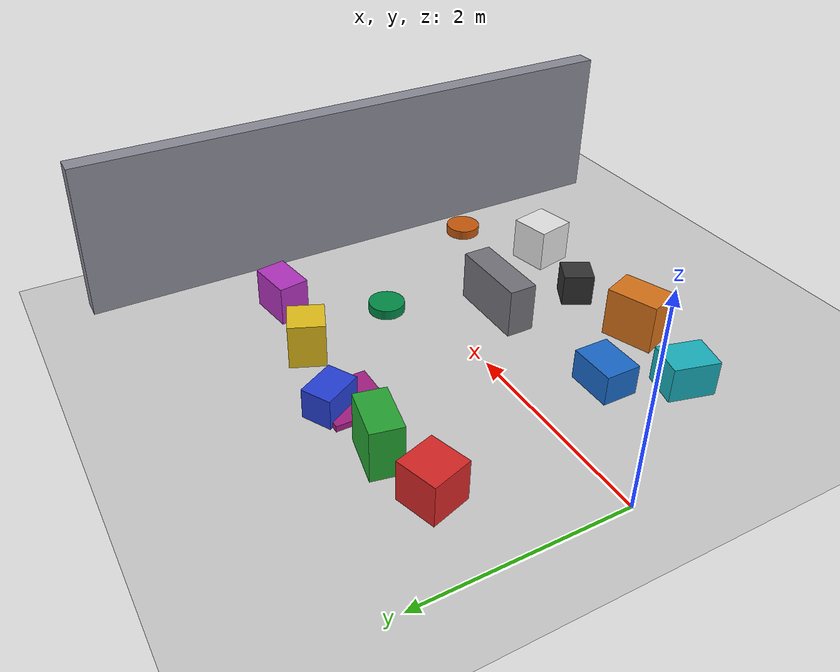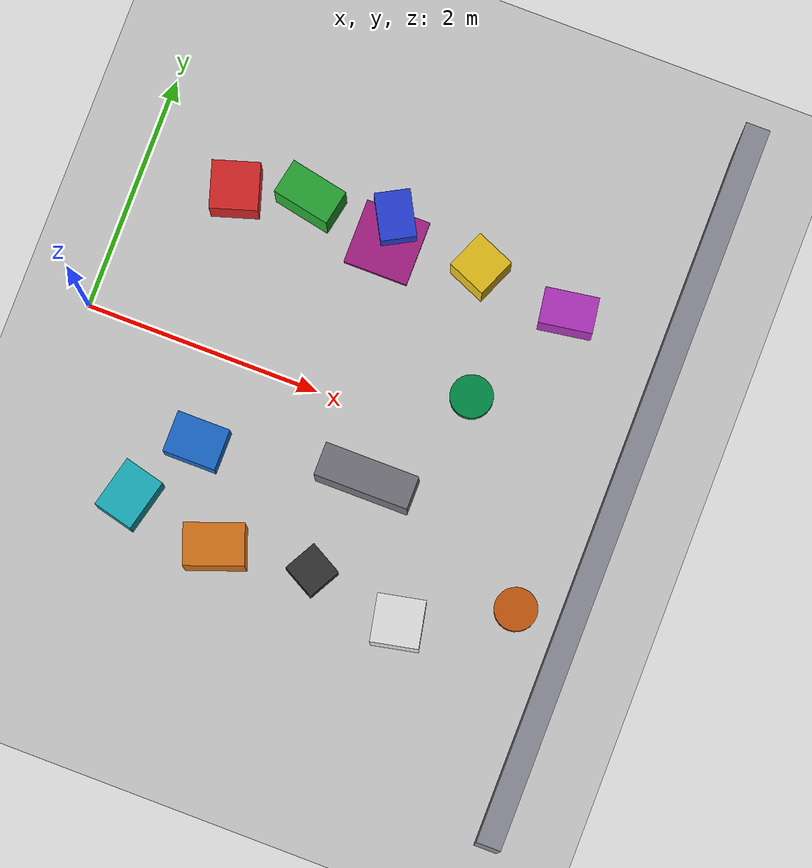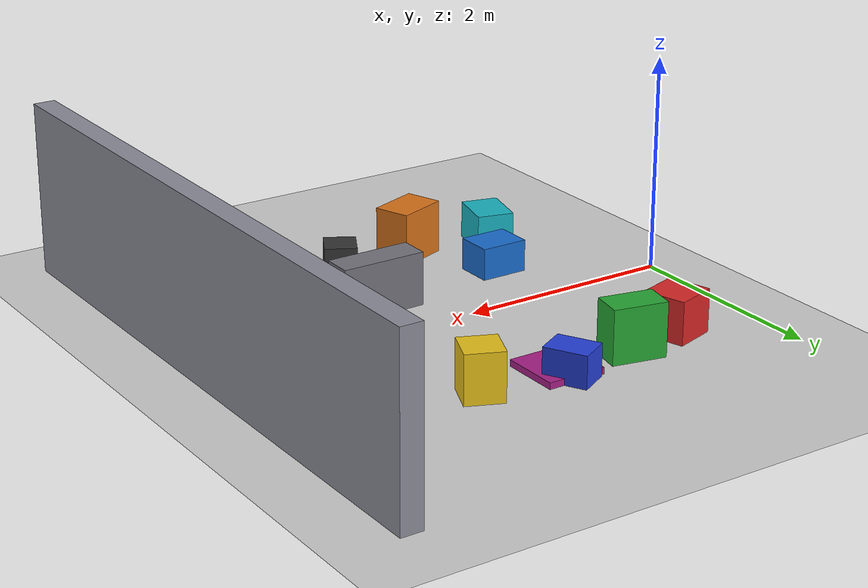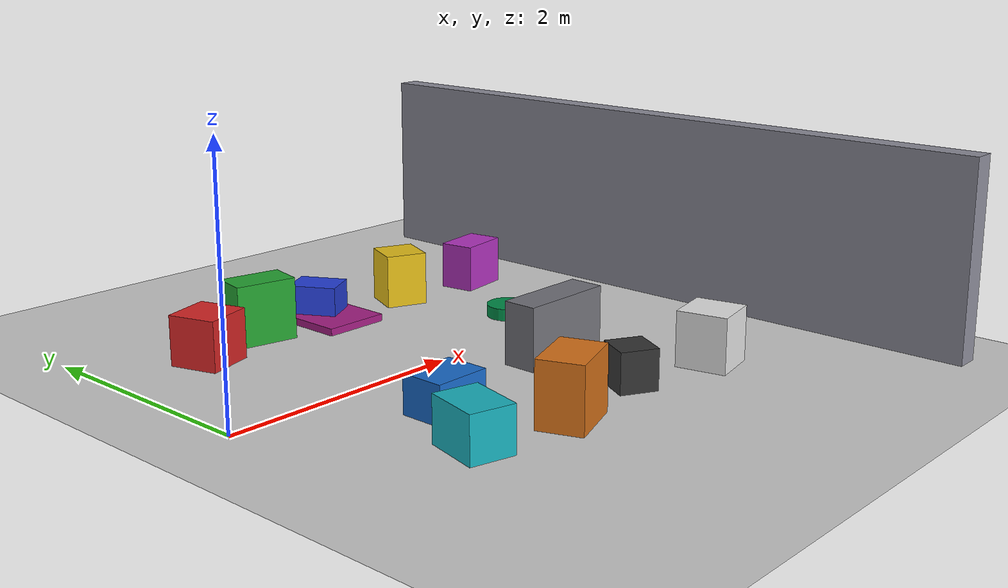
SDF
<?xml version="1.0"?>
<sdf version="1.6">
  <world name="collab_lab">
    <physics name="default_physics" default="0" type="ode">
      <max_step_size>0.001</max_step_size>
      <real_time_factor>1.0</real_time_factor>
      <real_time_update_rate>1000</real_time_update_rate>
    </physics>

    <!-- Ground truth for debugging: /gazebo/model_states publishes真实位姿，
         用于区分"里程计漂了"和"SLAM 错了"。 -->
    <plugin name="gazebo_ros_state" filename="libgazebo_ros_state.so">
      <ros>
        <namespace>/</namespace>
      </ros>
      <update_rate>30.0</update_rate>
    </plugin>

    <include>
      <uri>model://ground_plane</uri>
    </include>
    <include>
      <uri>model://sun</uri>
    </include>

    <model name="tool_shelf_marker">
      <pose>1.25 -0.75 0.15 0 0 0</pose>
      <static>true</static>
      <link name="link">
        <visual name="visual">
          <geometry>
            <box>
              <size>0.45 0.35 0.30</size>
            </box>
          </geometry>
          <material>
            <ambient>0.1 0.42 0.8 1</ambient>
            <diffuse>0.1 0.42 0.8 1</diffuse>
          </material>
        </visual>
        <collision name="collision">
          <geometry>
            <box>
              <size>0.45 0.35 0.30</size>
            </box>
          </geometry>
        </collision>
      </link>
    </model>

    <model name="station_a_marker">
      <pose>3.20 0.40 0.05 0 0 0</pose>
      <static>true</static>
      <link name="link">
        <visual name="visual">
          <geometry>
            <cylinder>
              <radius>0.18</radius>
              <length>0.10</length>
            </cylinder>
          </geometry>
          <material>
            <ambient>0.0 0.55 0.28 1</ambient>
            <diffuse>0.0 0.55 0.28 1</diffuse>
          </material>
        </visual>
      </link>
    </model>

    <model name="station_b_marker">
      <pose>4.15 -1.10 0.05 0 0 0</pose>
      <static>true</static>
      <link name="link">
        <visual name="visual">
          <geometry>
            <cylinder>
              <radius>0.18</radius>
              <length>0.10</length>
            </cylinder>
          </geometry>
          <material>
            <ambient>0.78 0.35 0.05 1</ambient>
            <diffuse>0.78 0.35 0.05 1</diffuse>
          </material>
        </visual>
      </link>
    </model>

    <model name="handover_zone_marker">
      <pose>2.10 1.35 0.03 0 0 0</pose>
      <static>true</static>
      <link name="link">
        <visual name="visual">
          <geometry>
            <box>
              <size>0.55 0.55 0.06</size>
            </box>
          </geometry>
          <material>
            <ambient>0.65 0.12 0.52 1</ambient>
            <diffuse>0.65 0.12 0.52 1</diffuse>
          </material>
        </visual>
      </link>
    </model>

    <model name="workbench_obstacle">
      <pose>2.65 -0.55 0.25 0 0 0</pose>
      <static>true</static>
      <link name="link">
        <visual name="visual">
          <geometry>
            <box>
              <size>0.80 0.28 0.50</size>
            </box>
          </geometry>
          <material>
            <ambient>0.45 0.45 0.48 1</ambient>
            <diffuse>0.45 0.45 0.48 1</diffuse>
          </material>
        </visual>
        <collision name="collision">
          <geometry>
            <box>
              <size>0.80 0.28 0.50</size>
            </box>
          </geometry>
        </collision>
      </link>
    </model>

    <model name="feature_crate_a">
      <pose>0.80 1.30 0.20 0 0 0.3</pose>
      <static>true</static>
      <link name="link"><visual name="visual"><geometry><box><size>0.4 0.4 0.4</size></box></geometry><material><ambient>0.85 0.15 0.15 1</ambient><diffuse>0.85 0.15 0.15 1</diffuse></material></visual></link>
    </model>
    <model name="feature_crate_b">
      <pose>1.40 1.45 0.25 0 0 -0.2</pose>
      <static>true</static>
      <link name="link"><visual name="visual"><geometry><box><size>0.5 0.3 0.5</size></box></geometry><material><ambient>0.15 0.65 0.2 1</ambient><diffuse>0.15 0.65 0.2 1</diffuse></material></visual></link>
    </model>
    <model name="feature_crate_c">
      <pose>2.10 1.55 0.15 0 0 0.5</pose>
      <static>true</static>
      <link name="link"><visual name="visual"><geometry><box><size>0.3 0.4 0.3</size></box></geometry><material><ambient>0.15 0.25 0.85 1</ambient><diffuse>0.15 0.25 0.85 1</diffuse></material></visual></link>
    </model>
    <model name="feature_crate_d">
      <pose>2.90 1.40 0.22 0 0 -0.4</pose>
      <static>true</static>
      <link name="link"><visual name="visual"><geometry><box><size>0.35 0.35 0.45</size></box></geometry><material><ambient>0.9 0.75 0.1 1</ambient><diffuse>0.9 0.75 0.1 1</diffuse></material></visual></link>
    </model>
    <model name="feature_crate_e">
      <pose>3.70 1.30 0.20 0 0 0.15</pose>
      <static>true</static>
      <link name="link"><visual name="visual"><geometry><box><size>0.45 0.3 0.4</size></box></geometry><material><ambient>0.7 0.2 0.75 1</ambient><diffuse>0.7 0.2 0.75 1</diffuse></material></visual></link>
    </model>
    <model name="feature_crate_f">
      <pose>0.90 -1.35 0.18 0 0 -0.25</pose>
      <static>true</static>
      <link name="link"><visual name="visual"><geometry><box><size>0.35 0.45 0.35</size></box></geometry><material><ambient>0.1 0.7 0.75 1</ambient><diffuse>0.1 0.7 0.75 1</diffuse></material></visual></link>
    </model>
    <model name="feature_crate_g">
      <pose>1.70 -1.50 0.25 0 0 0.35</pose>
      <static>true</static>
      <link name="link"><visual name="visual"><geometry><box><size>0.5 0.35 0.5</size></box></geometry><material><ambient>0.85 0.45 0.1 1</ambient><diffuse>0.85 0.45 0.1 1</diffuse></material></visual></link>
    </model>
    <model name="feature_crate_h">
      <pose>2.50 -1.40 0.16 0 0 -0.5</pose>
      <static>true</static>
      <link name="link"><visual name="visual"><geometry><box><size>0.3 0.3 0.32</size></box></geometry><material><ambient>0.2 0.2 0.2 1</ambient><diffuse>0.2 0.2 0.2 1</diffuse></material></visual></link>
    </model>
    <model name="feature_crate_i">
      <pose>3.30 -1.55 0.22 0 0 0.2</pose>
      <static>true</static>
      <link name="link"><visual name="visual"><geometry><box><size>0.4 0.4 0.44</size></box></geometry><material><ambient>0.9 0.9 0.9 1</ambient><diffuse>0.9 0.9 0.9 1</diffuse></material></visual></link>
    </model>
    <model name="feature_wall">
      <pose>4.60 0.0 0.80 0 0 0</pose>
      <static>true</static>
      <link name="link">
        <visual name="visual">
          <geometry><box><size>0.2 6.0 1.6</size></box></geometry>
          <material><ambient>0.55 0.55 0.6 1</ambient><diffuse>0.55 0.55 0.6 1</diffuse></material>
        </visual>
        <collision name="collision"><geometry><box><size>0.2 6.0 1.6</size></box></geometry></collision>
      </link>
    </model>
  </world>
</sdf>
